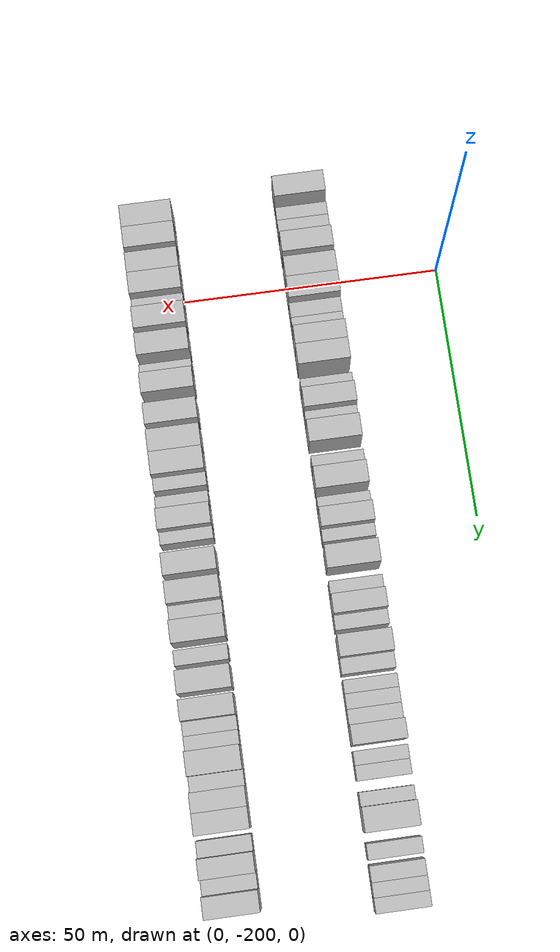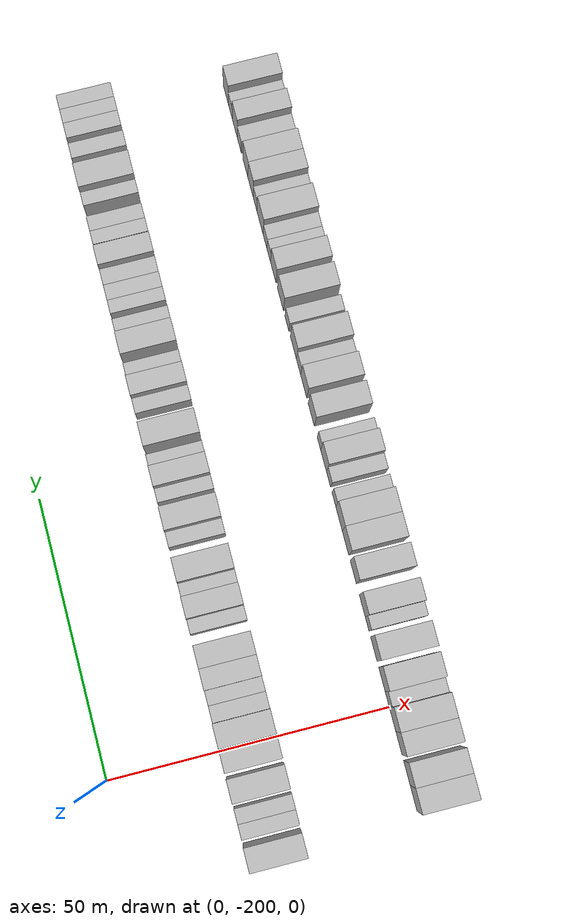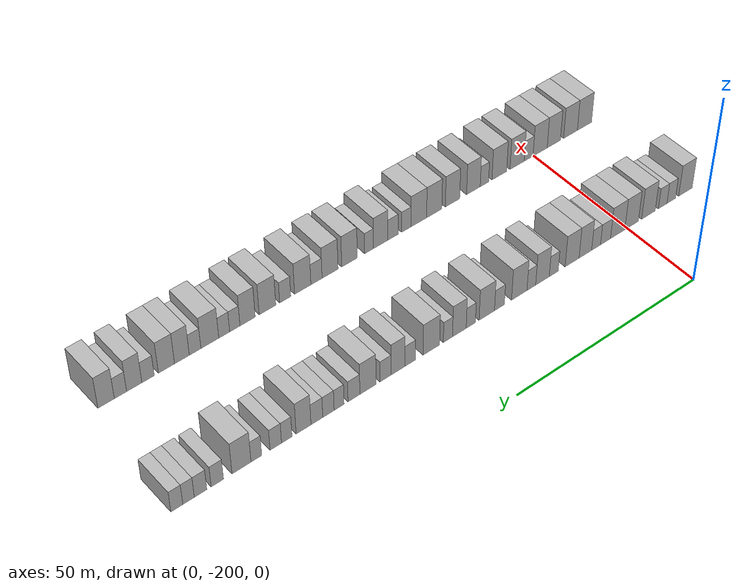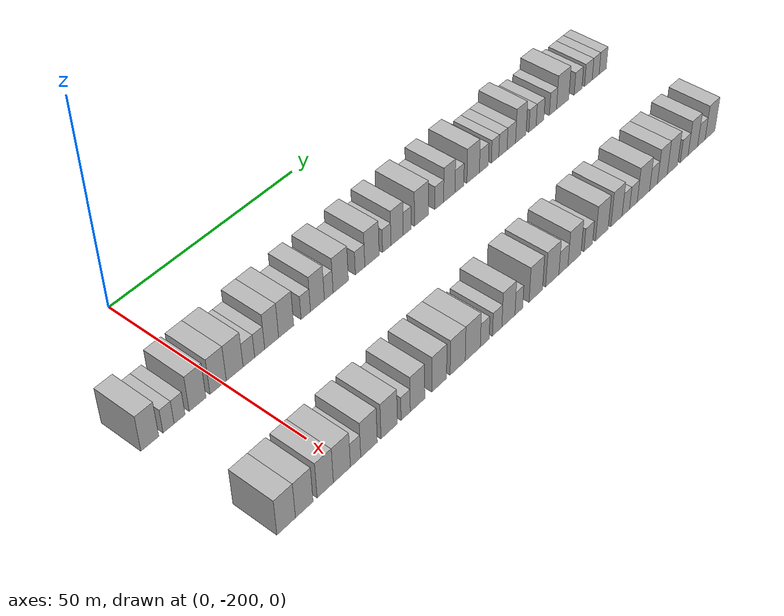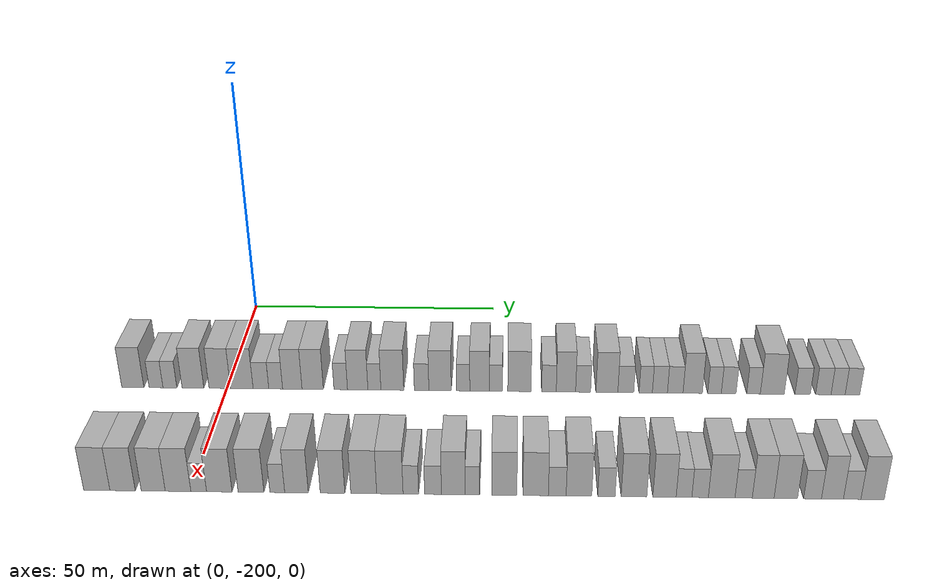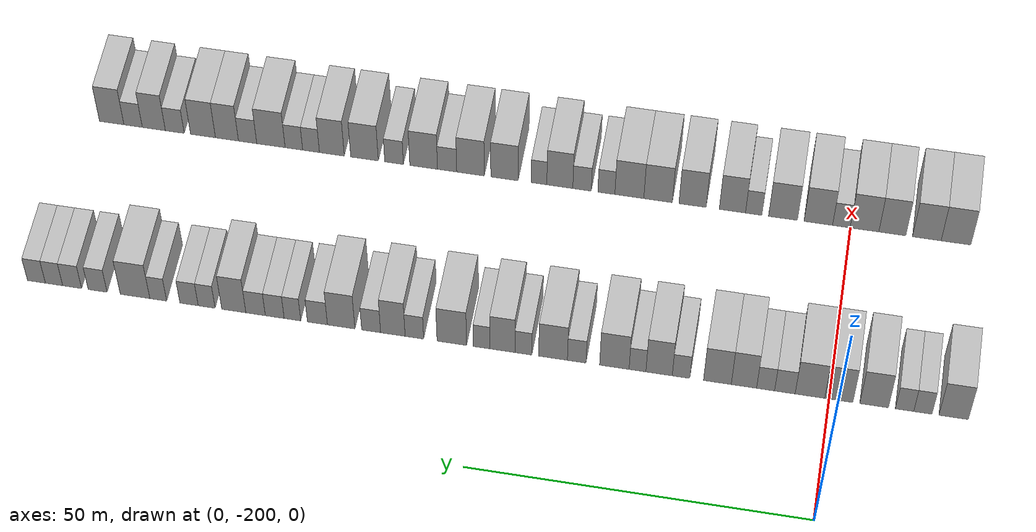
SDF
<sdf version="1.6">
 <world name="default">
  <model name="building_1">
   <static>1</static>
   <pose>25.0000 -217.8961 0 0.000000 0.000000 0.000000</pose>
   <link name="link">
    <pose>0 0 4.50 0 0 0</pose>
    <collision name="collision"><geometry><box><size>10.0000 4.2077 9.0000</size></box></geometry></collision>
    <visual name="visual">
     <cast_shadows>0</cast_shadows>
     <geometry><box><size>10.0000 4.2077 9.0000</size></box></geometry>
     <material>
      <script>
       <uri>model://HANNAS_wall/materials/scripts</uri>
       <uri>model://HANNAS_wall/materials/textures</uri>
       <name>vrc/HANNAS_wall</name>
      </script>
     </material>
    </visual>
   </link>
  </model>
  <model name="building_2">
   <static>1</static>
   <pose>25.0000 -213.4765 0 0.000000 0.000000 0.000000</pose>
   <link name="link">
    <pose>0 0 3.00 0 0 0</pose>
    <collision name="collision"><geometry><box><size>10.0000 2.6316 6.0000</size></box></geometry></collision>
    <visual name="visual">
     <cast_shadows>0</cast_shadows>
     <geometry><box><size>10.0000 2.6316 6.0000</size></box></geometry>
     <material>
      <script>
       <uri>model://HANNAS_wall/materials/scripts</uri>
       <uri>model://HANNAS_wall/materials/textures</uri>
       <name>vrc/HANNAS_wall</name>
      </script>
     </material>
    </visual>
   </link>
  </model>
  <model name="building_3">
   <static>1</static>
   <pose>25.0000 -210.8408 0 0.000000 0.000000 0.000000</pose>
   <link name="link">
    <pose>0 0 3.00 0 0 0</pose>
    <collision name="collision"><geometry><box><size>10.0000 2.6396 6.0000</size></box></geometry></collision>
    <visual name="visual">
     <cast_shadows>0</cast_shadows>
     <geometry><box><size>10.0000 2.6396 6.0000</size></box></geometry>
     <material>
      <script>
       <uri>model://HANNAS_wall/materials/scripts</uri>
       <uri>model://HANNAS_wall/materials/textures</uri>
       <name>vrc/HANNAS_wall</name>
      </script>
     </material>
    </visual>
   </link>
  </model>
  <model name="building_4">
   <static>1</static>
   <pose>25.0000 -206.4568 0 0.000000 0.000000 0.000000</pose>
   <link name="link">
    <pose>0 0 4.50 0 0 0</pose>
    <collision name="collision"><geometry><box><size>10.0000 4.1285 9.0000</size></box></geometry></collision>
    <visual name="visual">
     <cast_shadows>0</cast_shadows>
     <geometry><box><size>10.0000 4.1285 9.0000</size></box></geometry>
     <material>
      <script>
       <uri>model://HANNAS_wall/materials/scripts</uri>
       <uri>model://HANNAS_wall/materials/textures</uri>
       <name>vrc/HANNAS_wall</name>
      </script>
     </material>
    </visual>
   </link>
  </model>
  <model name="building_5">
   <static>1</static>
   <pose>25.0000 -201.3536 0 0.000000 0.000000 0.000000</pose>
   <link name="link">
    <pose>0 0 4.50 0 0 0</pose>
    <collision name="collision"><geometry><box><size>10.0000 4.0779 9.0000</size></box></geometry></collision>
    <visual name="visual">
     <cast_shadows>0</cast_shadows>
     <geometry><box><size>10.0000 4.0779 9.0000</size></box></geometry>
     <material>
      <script>
       <uri>model://HANNAS_wall/materials/scripts</uri>
       <uri>model://HANNAS_wall/materials/textures</uri>
       <name>vrc/HANNAS_wall</name>
      </script>
     </material>
    </visual>
   </link>
  </model>
  <model name="building_6">
   <static>1</static>
   <pose>25.0000 -197.1710 0 0.000000 0.000000 0.000000</pose>
   <link name="link">
    <pose>0 0 4.50 0 0 0</pose>
    <collision name="collision"><geometry><box><size>10.0000 4.2873 9.0000</size></box></geometry></collision>
    <visual name="visual">
     <cast_shadows>0</cast_shadows>
     <geometry><box><size>10.0000 4.2873 9.0000</size></box></geometry>
     <material>
      <script>
       <uri>model://HANNAS_wall/materials/scripts</uri>
       <uri>model://HANNAS_wall/materials/textures</uri>
       <name>vrc/HANNAS_wall</name>
      </script>
     </material>
    </visual>
   </link>
  </model>
  <model name="building_7">
   <static>1</static>
   <pose>25.0000 -193.5384 0 0.000000 0.000000 0.000000</pose>
   <link name="link">
    <pose>0 0 3.00 0 0 0</pose>
    <collision name="collision"><geometry><box><size>10.0000 2.9780 6.0000</size></box></geometry></collision>
    <visual name="visual">
     <cast_shadows>0</cast_shadows>
     <geometry><box><size>10.0000 2.9780 6.0000</size></box></geometry>
     <material>
      <script>
       <uri>model://HANNAS_wall/materials/scripts</uri>
       <uri>model://HANNAS_wall/materials/textures</uri>
       <name>vrc/HANNAS_wall</name>
      </script>
     </material>
    </visual>
   </link>
  </model>
  <model name="building_8">
   <static>1</static>
   <pose>25.0000 -190.7405 0 0.000000 0.000000 0.000000</pose>
   <link name="link">
    <pose>0 0 3.00 0 0 0</pose>
    <collision name="collision"><geometry><box><size>10.0000 2.6176 6.0000</size></box></geometry></collision>
    <visual name="visual">
     <cast_shadows>0</cast_shadows>
     <geometry><box><size>10.0000 2.6176 6.0000</size></box></geometry>
     <material>
      <script>
       <uri>model://HANNAS_wall/materials/scripts</uri>
       <uri>model://HANNAS_wall/materials/textures</uri>
       <name>vrc/HANNAS_wall</name>
      </script>
     </material>
    </visual>
   </link>
  </model>
  <model name="building_9">
   <static>1</static>
   <pose>25.0000 -187.5881 0 0.000000 0.000000 0.000000</pose>
   <link name="link">
    <pose>0 0 4.50 0 0 0</pose>
    <collision name="collision"><geometry><box><size>10.0000 3.6871 9.0000</size></box></geometry></collision>
    <visual name="visual">
     <cast_shadows>0</cast_shadows>
     <geometry><box><size>10.0000 3.6871 9.0000</size></box></geometry>
     <material>
      <script>
       <uri>model://HANNAS_wall/materials/scripts</uri>
       <uri>model://HANNAS_wall/materials/textures</uri>
       <name>vrc/HANNAS_wall</name>
      </script>
     </material>
    </visual>
   </link>
  </model>
  <model name="building_10">
   <static>1</static>
   <pose>25.0000 -183.7218 0 0.000000 0.000000 0.000000</pose>
   <link name="link">
    <pose>0 0 4.50 0 0 0</pose>
    <collision name="collision"><geometry><box><size>10.0000 4.0456 9.0000</size></box></geometry></collision>
    <visual name="visual">
     <cast_shadows>0</cast_shadows>
     <geometry><box><size>10.0000 4.0456 9.0000</size></box></geometry>
     <material>
      <script>
       <uri>model://HANNAS_wall/materials/scripts</uri>
       <uri>model://HANNAS_wall/materials/textures</uri>
       <name>vrc/HANNAS_wall</name>
      </script>
     </material>
    </visual>
   </link>
  </model>
  <model name="building_11">
   <static>1</static>
   <pose>25.0000 -178.4140 0 0.000000 0.000000 0.000000</pose>
   <link name="link">
    <pose>0 0 3.00 0 0 0</pose>
    <collision name="collision"><geometry><box><size>10.0000 2.5701 6.0000</size></box></geometry></collision>
    <visual name="visual">
     <cast_shadows>0</cast_shadows>
     <geometry><box><size>10.0000 2.5701 6.0000</size></box></geometry>
     <material>
      <script>
       <uri>model://HANNAS_wall/materials/scripts</uri>
       <uri>model://HANNAS_wall/materials/textures</uri>
       <name>vrc/HANNAS_wall</name>
      </script>
     </material>
    </visual>
   </link>
  </model>
  <model name="building_12">
   <static>1</static>
   <pose>25.0000 -175.1994 0 0.000000 0.000000 0.000000</pose>
   <link name="link">
    <pose>0 0 4.50 0 0 0</pose>
    <collision name="collision"><geometry><box><size>10.0000 3.8590 9.0000</size></box></geometry></collision>
    <visual name="visual">
     <cast_shadows>0</cast_shadows>
     <geometry><box><size>10.0000 3.8590 9.0000</size></box></geometry>
     <material>
      <script>
       <uri>model://HANNAS_wall/materials/scripts</uri>
       <uri>model://HANNAS_wall/materials/textures</uri>
       <name>vrc/HANNAS_wall</name>
      </script>
     </material>
    </visual>
   </link>
  </model>
  <model name="building_13">
   <static>1</static>
   <pose>25.0000 -172.0381 0 0.000000 0.000000 0.000000</pose>
   <link name="link">
    <pose>0 0 3.00 0 0 0</pose>
    <collision name="collision"><geometry><box><size>10.0000 2.4635 6.0000</size></box></geometry></collision>
    <visual name="visual">
     <cast_shadows>0</cast_shadows>
     <geometry><box><size>10.0000 2.4635 6.0000</size></box></geometry>
     <material>
      <script>
       <uri>model://HANNAS_wall/materials/scripts</uri>
       <uri>model://HANNAS_wall/materials/textures</uri>
       <name>vrc/HANNAS_wall</name>
      </script>
     </material>
    </visual>
   </link>
  </model>
  <model name="building_14">
   <static>1</static>
   <pose>25.0000 -168.6430 0 0.000000 0.000000 0.000000</pose>
   <link name="link">
    <pose>0 0 4.50 0 0 0</pose>
    <collision name="collision"><geometry><box><size>10.0000 4.3266 9.0000</size></box></geometry></collision>
    <visual name="visual">
     <cast_shadows>0</cast_shadows>
     <geometry><box><size>10.0000 4.3266 9.0000</size></box></geometry>
     <material>
      <script>
       <uri>model://HANNAS_wall/materials/scripts</uri>
       <uri>model://HANNAS_wall/materials/textures</uri>
       <name>vrc/HANNAS_wall</name>
      </script>
     </material>
    </visual>
   </link>
  </model>
  <model name="building_15">
   <static>1</static>
   <pose>25.0000 -163.1092 0 0.000000 0.000000 0.000000</pose>
   <link name="link">
    <pose>0 0 3.00 0 0 0</pose>
    <collision name="collision"><geometry><box><size>10.0000 2.7412 6.0000</size></box></geometry></collision>
    <visual name="visual">
     <cast_shadows>0</cast_shadows>
     <geometry><box><size>10.0000 2.7412 6.0000</size></box></geometry>
     <material>
      <script>
       <uri>model://HANNAS_wall/materials/scripts</uri>
       <uri>model://HANNAS_wall/materials/textures</uri>
       <name>vrc/HANNAS_wall</name>
      </script>
     </material>
    </visual>
   </link>
  </model>
  <model name="building_16">
   <static>1</static>
   <pose>25.0000 -159.6226 0 0.000000 0.000000 0.000000</pose>
   <link name="link">
    <pose>0 0 4.50 0 0 0</pose>
    <collision name="collision"><geometry><box><size>10.0000 4.2318 9.0000</size></box></geometry></collision>
    <visual name="visual">
     <cast_shadows>0</cast_shadows>
     <geometry><box><size>10.0000 4.2318 9.0000</size></box></geometry>
     <material>
      <script>
       <uri>model://HANNAS_wall/materials/scripts</uri>
       <uri>model://HANNAS_wall/materials/textures</uri>
       <name>vrc/HANNAS_wall</name>
      </script>
     </material>
    </visual>
   </link>
  </model>
  <model name="building_17">
   <static>1</static>
   <pose>25.0000 -155.2536 0 0.000000 0.000000 0.000000</pose>
   <link name="link">
    <pose>0 0 3.00 0 0 0</pose>
    <collision name="collision"><geometry><box><size>10.0000 2.5063 6.0000</size></box></geometry></collision>
    <visual name="visual">
     <cast_shadows>0</cast_shadows>
     <geometry><box><size>10.0000 2.5063 6.0000</size></box></geometry>
     <material>
      <script>
       <uri>model://HANNAS_wall/materials/scripts</uri>
       <uri>model://HANNAS_wall/materials/textures</uri>
       <name>vrc/HANNAS_wall</name>
      </script>
     </material>
    </visual>
   </link>
  </model>
  <model name="building_18">
   <static>1</static>
   <pose>25.0000 -152.1477 0 0.000000 0.000000 0.000000</pose>
   <link name="link">
    <pose>0 0 4.50 0 0 0</pose>
    <collision name="collision"><geometry><box><size>10.0000 3.7055 9.0000</size></box></geometry></collision>
    <visual name="visual">
     <cast_shadows>0</cast_shadows>
     <geometry><box><size>10.0000 3.7055 9.0000</size></box></geometry>
     <material>
      <script>
       <uri>model://HANNAS_wall/materials/scripts</uri>
       <uri>model://HANNAS_wall/materials/textures</uri>
       <name>vrc/HANNAS_wall</name>
      </script>
     </material>
    </visual>
   </link>
  </model>
  <model name="building_19">
   <static>1</static>
   <pose>25.0000 -149.0705 0 0.000000 0.000000 0.000000</pose>
   <link name="link">
    <pose>0 0 3.00 0 0 0</pose>
    <collision name="collision"><geometry><box><size>10.0000 2.4488 6.0000</size></box></geometry></collision>
    <visual name="visual">
     <cast_shadows>0</cast_shadows>
     <geometry><box><size>10.0000 2.4488 6.0000</size></box></geometry>
     <material>
      <script>
       <uri>model://HANNAS_wall/materials/scripts</uri>
       <uri>model://HANNAS_wall/materials/textures</uri>
       <name>vrc/HANNAS_wall</name>
      </script>
     </material>
    </visual>
   </link>
  </model>
  <model name="building_20">
   <static>1</static>
   <pose>25.0000 -144.6544 0 0.000000 0.000000 0.000000</pose>
   <link name="link">
    <pose>0 0 4.50 0 0 0</pose>
    <collision name="collision"><geometry><box><size>10.0000 4.3834 9.0000</size></box></geometry></collision>
    <visual name="visual">
     <cast_shadows>0</cast_shadows>
     <geometry><box><size>10.0000 4.3834 9.0000</size></box></geometry>
     <material>
      <script>
       <uri>model://HANNAS_wall/materials/scripts</uri>
       <uri>model://HANNAS_wall/materials/textures</uri>
       <name>vrc/HANNAS_wall</name>
      </script>
     </material>
    </visual>
   </link>
  </model>
  <model name="building_21">
   <static>1</static>
   <pose>25.0000 -139.0857 0 0.000000 0.000000 0.000000</pose>
   <link name="link">
    <pose>0 0 3.00 0 0 0</pose>
    <collision name="collision"><geometry><box><size>10.0000 2.7540 6.0000</size></box></geometry></collision>
    <visual name="visual">
     <cast_shadows>0</cast_shadows>
     <geometry><box><size>10.0000 2.7540 6.0000</size></box></geometry>
     <material>
      <script>
       <uri>model://HANNAS_wall/materials/scripts</uri>
       <uri>model://HANNAS_wall/materials/textures</uri>
       <name>vrc/HANNAS_wall</name>
      </script>
     </material>
    </visual>
   </link>
  </model>
  <model name="building_22">
   <static>1</static>
   <pose>25.0000 -135.8844 0 0.000000 0.000000 0.000000</pose>
   <link name="link">
    <pose>0 0 4.50 0 0 0</pose>
    <collision name="collision"><geometry><box><size>10.0000 3.6485 9.0000</size></box></geometry></collision>
    <visual name="visual">
     <cast_shadows>0</cast_shadows>
     <geometry><box><size>10.0000 3.6485 9.0000</size></box></geometry>
     <material>
      <script>
       <uri>model://HANNAS_wall/materials/scripts</uri>
       <uri>model://HANNAS_wall/materials/textures</uri>
       <name>vrc/HANNAS_wall</name>
      </script>
     </material>
    </visual>
   </link>
  </model>
  <model name="building_23">
   <static>1</static>
   <pose>25.0000 -132.6452 0 0.000000 0.000000 0.000000</pose>
   <link name="link">
    <pose>0 0 3.00 0 0 0</pose>
    <collision name="collision"><geometry><box><size>10.0000 2.8299 6.0000</size></box></geometry></collision>
    <visual name="visual">
     <cast_shadows>0</cast_shadows>
     <geometry><box><size>10.0000 2.8299 6.0000</size></box></geometry>
     <material>
      <script>
       <uri>model://HANNAS_wall/materials/scripts</uri>
       <uri>model://HANNAS_wall/materials/textures</uri>
       <name>vrc/HANNAS_wall</name>
      </script>
     </material>
    </visual>
   </link>
  </model>
  <model name="building_24">
   <static>1</static>
   <pose>25.0000 -128.1706 0 0.000000 0.000000 0.000000</pose>
   <link name="link">
    <pose>0 0 4.50 0 0 0</pose>
    <collision name="collision"><geometry><box><size>10.0000 4.1194 9.0000</size></box></geometry></collision>
    <visual name="visual">
     <cast_shadows>0</cast_shadows>
     <geometry><box><size>10.0000 4.1194 9.0000</size></box></geometry>
     <material>
      <script>
       <uri>model://HANNAS_wall/materials/scripts</uri>
       <uri>model://HANNAS_wall/materials/textures</uri>
       <name>vrc/HANNAS_wall</name>
      </script>
     </material>
    </visual>
   </link>
  </model>
  <model name="building_25">
   <static>1</static>
   <pose>25.0000 -124.6140 0 0.000000 0.000000 0.000000</pose>
   <link name="link">
    <pose>0 0 3.00 0 0 0</pose>
    <collision name="collision"><geometry><box><size>10.0000 2.9939 6.0000</size></box></geometry></collision>
    <visual name="visual">
     <cast_shadows>0</cast_shadows>
     <geometry><box><size>10.0000 2.9939 6.0000</size></box></geometry>
     <material>
      <script>
       <uri>model://HANNAS_wall/materials/scripts</uri>
       <uri>model://HANNAS_wall/materials/textures</uri>
       <name>vrc/HANNAS_wall</name>
      </script>
     </material>
    </visual>
   </link>
  </model>
  <model name="building_26">
   <static>1</static>
   <pose>25.0000 -120.8697 0 0.000000 0.000000 0.000000</pose>
   <link name="link">
    <pose>0 0 3.00 0 0 0</pose>
    <collision name="collision"><geometry><box><size>10.0000 2.4948 6.0000</size></box></geometry></collision>
    <visual name="visual">
     <cast_shadows>0</cast_shadows>
     <geometry><box><size>10.0000 2.4948 6.0000</size></box></geometry>
     <material>
      <script>
       <uri>model://HANNAS_wall/materials/scripts</uri>
       <uri>model://HANNAS_wall/materials/textures</uri>
       <name>vrc/HANNAS_wall</name>
      </script>
     </material>
    </visual>
   </link>
  </model>
  <model name="building_27">
   <static>1</static>
   <pose>25.0000 -118.2075 0 0.000000 0.000000 0.000000</pose>
   <link name="link">
    <pose>0 0 3.00 0 0 0</pose>
    <collision name="collision"><geometry><box><size>10.0000 2.8295 6.0000</size></box></geometry></collision>
    <visual name="visual">
     <cast_shadows>0</cast_shadows>
     <geometry><box><size>10.0000 2.8295 6.0000</size></box></geometry>
     <material>
      <script>
       <uri>model://HANNAS_wall/materials/scripts</uri>
       <uri>model://HANNAS_wall/materials/textures</uri>
       <name>vrc/HANNAS_wall</name>
      </script>
     </material>
    </visual>
   </link>
  </model>
  <model name="building_28">
   <static>1</static>
   <pose>25.0000 -115.3302 0 0.000000 0.000000 0.000000</pose>
   <link name="link">
    <pose>0 0 3.00 0 0 0</pose>
    <collision name="collision"><geometry><box><size>10.0000 2.9252 6.0000</size></box></geometry></collision>
    <visual name="visual">
     <cast_shadows>0</cast_shadows>
     <geometry><box><size>10.0000 2.9252 6.0000</size></box></geometry>
     <material>
      <script>
       <uri>model://HANNAS_wall/materials/scripts</uri>
       <uri>model://HANNAS_wall/materials/textures</uri>
       <name>vrc/HANNAS_wall</name>
      </script>
     </material>
    </visual>
   </link>
  </model>
  <model name="building_29">
   <static>1</static>
   <pose>25.0000 -112.0483 0 0.000000 0.000000 0.000000</pose>
   <link name="link">
    <pose>0 0 4.50 0 0 0</pose>
    <collision name="collision"><geometry><box><size>10.0000 3.6387 9.0000</size></box></geometry></collision>
    <visual name="visual">
     <cast_shadows>0</cast_shadows>
     <geometry><box><size>10.0000 3.6387 9.0000</size></box></geometry>
     <material>
      <script>
       <uri>model://HANNAS_wall/materials/scripts</uri>
       <uri>model://HANNAS_wall/materials/textures</uri>
       <name>vrc/HANNAS_wall</name>
      </script>
     </material>
    </visual>
   </link>
  </model>
  <model name="building_30">
   <static>1</static>
   <pose>25.0000 -107.9524 0 0.000000 0.000000 0.000000</pose>
   <link name="link">
    <pose>0 0 3.00 0 0 0</pose>
    <collision name="collision"><geometry><box><size>10.0000 2.5531 6.0000</size></box></geometry></collision>
    <visual name="visual">
     <cast_shadows>0</cast_shadows>
     <geometry><box><size>10.0000 2.5531 6.0000</size></box></geometry>
     <material>
      <script>
       <uri>model://HANNAS_wall/materials/scripts</uri>
       <uri>model://HANNAS_wall/materials/textures</uri>
       <name>vrc/HANNAS_wall</name>
      </script>
     </material>
    </visual>
   </link>
  </model>
  <model name="building_31">
   <static>1</static>
   <pose>25.0000 -105.2951 0 0.000000 0.000000 0.000000</pose>
   <link name="link">
    <pose>0 0 3.00 0 0 0</pose>
    <collision name="collision"><geometry><box><size>10.0000 2.7616 6.0000</size></box></geometry></collision>
    <visual name="visual">
     <cast_shadows>0</cast_shadows>
     <geometry><box><size>10.0000 2.7616 6.0000</size></box></geometry>
     <material>
      <script>
       <uri>model://HANNAS_wall/materials/scripts</uri>
       <uri>model://HANNAS_wall/materials/textures</uri>
       <name>vrc/HANNAS_wall</name>
      </script>
     </material>
    </visual>
   </link>
  </model>
  <model name="building_32">
   <static>1</static>
   <pose>25.0000 -100.6387 0 0.000000 0.000000 0.000000</pose>
   <link name="link">
    <pose>0 0 3.00 0 0 0</pose>
    <collision name="collision"><geometry><box><size>10.0000 2.5512 6.0000</size></box></geometry></collision>
    <visual name="visual">
     <cast_shadows>0</cast_shadows>
     <geometry><box><size>10.0000 2.5512 6.0000</size></box></geometry>
     <material>
      <script>
       <uri>model://HANNAS_wall/materials/scripts</uri>
       <uri>model://HANNAS_wall/materials/textures</uri>
       <name>vrc/HANNAS_wall</name>
      </script>
     </material>
    </visual>
   </link>
  </model>
  <model name="building_33">
   <static>1</static>
   <pose>25.0000 -97.1202 0 0.000000 0.000000 0.000000</pose>
   <link name="link">
    <pose>0 0 4.50 0 0 0</pose>
    <collision name="collision"><geometry><box><size>10.0000 4.4859 9.0000</size></box></geometry></collision>
    <visual name="visual">
     <cast_shadows>0</cast_shadows>
     <geometry><box><size>10.0000 4.4859 9.0000</size></box></geometry>
     <material>
      <script>
       <uri>model://HANNAS_wall/materials/scripts</uri>
       <uri>model://HANNAS_wall/materials/textures</uri>
       <name>vrc/HANNAS_wall</name>
      </script>
     </material>
    </visual>
   </link>
  </model>
  <model name="building_34">
   <static>1</static>
   <pose>25.0000 -91.4391 0 0.000000 0.000000 0.000000</pose>
   <link name="link">
    <pose>0 0 3.00 0 0 0</pose>
    <collision name="collision"><geometry><box><size>10.0000 2.8762 6.0000</size></box></geometry></collision>
    <visual name="visual">
     <cast_shadows>0</cast_shadows>
     <geometry><box><size>10.0000 2.8762 6.0000</size></box></geometry>
     <material>
      <script>
       <uri>model://HANNAS_wall/materials/scripts</uri>
       <uri>model://HANNAS_wall/materials/textures</uri>
       <name>vrc/HANNAS_wall</name>
      </script>
     </material>
    </visual>
   </link>
  </model>
  <model name="building_35">
   <static>1</static>
   <pose>25.0000 -87.5607 0 0.000000 0.000000 0.000000</pose>
   <link name="link">
    <pose>0 0 3.00 0 0 0</pose>
    <collision name="collision"><geometry><box><size>10.0000 2.8806 6.0000</size></box></geometry></collision>
    <visual name="visual">
     <cast_shadows>0</cast_shadows>
     <geometry><box><size>10.0000 2.8806 6.0000</size></box></geometry>
     <material>
      <script>
       <uri>model://HANNAS_wall/materials/scripts</uri>
       <uri>model://HANNAS_wall/materials/textures</uri>
       <name>vrc/HANNAS_wall</name>
      </script>
     </material>
    </visual>
   </link>
  </model>
  <model name="building_36">
   <static>1</static>
   <pose>25.0000 -84.8010 0 0.000000 0.000000 0.000000</pose>
   <link name="link">
    <pose>0 0 3.00 0 0 0</pose>
    <collision name="collision"><geometry><box><size>10.0000 2.6389 6.0000</size></box></geometry></collision>
    <visual name="visual">
     <cast_shadows>0</cast_shadows>
     <geometry><box><size>10.0000 2.6389 6.0000</size></box></geometry>
     <material>
      <script>
       <uri>model://HANNAS_wall/materials/scripts</uri>
       <uri>model://HANNAS_wall/materials/textures</uri>
       <name>vrc/HANNAS_wall</name>
      </script>
     </material>
    </visual>
   </link>
  </model>
  <model name="building_37">
   <static>1</static>
   <pose>25.0000 -82.1137 0 0.000000 0.000000 0.000000</pose>
   <link name="link">
    <pose>0 0 3.00 0 0 0</pose>
    <collision name="collision"><geometry><box><size>10.0000 2.7355 6.0000</size></box></geometry></collision>
    <visual name="visual">
     <cast_shadows>0</cast_shadows>
     <geometry><box><size>10.0000 2.7355 6.0000</size></box></geometry>
     <material>
      <script>
       <uri>model://HANNAS_wall/materials/scripts</uri>
       <uri>model://HANNAS_wall/materials/textures</uri>
       <name>vrc/HANNAS_wall</name>
      </script>
     </material>
    </visual>
   </link>
  </model>
  <model name="building_107">
   <static>1</static>
   <pose>55.0000 -215.7790 0 0.000000 0.000000 0.000000</pose>
   <link name="link">
    <pose>0 0 4.50 0 0 0</pose>
    <collision name="collision"><geometry><box><size>10.0000 4.4420 9.0000</size></box></geometry></collision>
    <visual name="visual">
     <cast_shadows>0</cast_shadows>
     <geometry><box><size>10.0000 4.4420 9.0000</size></box></geometry>
     <material>
      <script>
       <uri>model://HANNAS_wall/materials/scripts</uri>
       <uri>model://HANNAS_wall/materials/textures</uri>
       <name>vrc/HANNAS_wall</name>
      </script>
     </material>
    </visual>
   </link>
  </model>
  <model name="building_108">
   <static>1</static>
   <pose>55.0000 -211.4165 0 0.000000 0.000000 0.000000</pose>
   <link name="link">
    <pose>0 0 4.50 0 0 0</pose>
    <collision name="collision"><geometry><box><size>10.0000 4.2831 9.0000</size></box></geometry></collision>
    <visual name="visual">
     <cast_shadows>0</cast_shadows>
     <geometry><box><size>10.0000 4.2831 9.0000</size></box></geometry>
     <material>
      <script>
       <uri>model://HANNAS_wall/materials/scripts</uri>
       <uri>model://HANNAS_wall/materials/textures</uri>
       <name>vrc/HANNAS_wall</name>
      </script>
     </material>
    </visual>
   </link>
  </model>
  <model name="building_109">
   <static>1</static>
   <pose>55.0000 -206.2473 0 0.000000 0.000000 0.000000</pose>
   <link name="link">
    <pose>0 0 4.50 0 0 0</pose>
    <collision name="collision"><geometry><box><size>10.0000 4.0553 9.0000</size></box></geometry></collision>
    <visual name="visual">
     <cast_shadows>0</cast_shadows>
     <geometry><box><size>10.0000 4.0553 9.0000</size></box></geometry>
     <material>
      <script>
       <uri>model://HANNAS_wall/materials/scripts</uri>
       <uri>model://HANNAS_wall/materials/textures</uri>
       <name>vrc/HANNAS_wall</name>
      </script>
     </material>
    </visual>
   </link>
  </model>
  <model name="building_110">
   <static>1</static>
   <pose>55.0000 -202.0611 0 0.000000 0.000000 0.000000</pose>
   <link name="link">
    <pose>0 0 4.50 0 0 0</pose>
    <collision name="collision"><geometry><box><size>10.0000 4.3172 9.0000</size></box></geometry></collision>
    <visual name="visual">
     <cast_shadows>0</cast_shadows>
     <geometry><box><size>10.0000 4.3172 9.0000</size></box></geometry>
     <material>
      <script>
       <uri>model://HANNAS_wall/materials/scripts</uri>
       <uri>model://HANNAS_wall/materials/textures</uri>
       <name>vrc/HANNAS_wall</name>
      </script>
     </material>
    </visual>
   </link>
  </model>
  <model name="building_111">
   <static>1</static>
   <pose>55.0000 -198.5797 0 0.000000 0.000000 0.000000</pose>
   <link name="link">
    <pose>0 0 3.00 0 0 0</pose>
    <collision name="collision"><geometry><box><size>10.0000 2.6455 6.0000</size></box></geometry></collision>
    <visual name="visual">
     <cast_shadows>0</cast_shadows>
     <geometry><box><size>10.0000 2.6455 6.0000</size></box></geometry>
     <material>
      <script>
       <uri>model://HANNAS_wall/materials/scripts</uri>
       <uri>model://HANNAS_wall/materials/textures</uri>
       <name>vrc/HANNAS_wall</name>
      </script>
     </material>
    </visual>
   </link>
  </model>
  <model name="building_112">
   <static>1</static>
   <pose>55.0000 -195.1062 0 0.000000 0.000000 0.000000</pose>
   <link name="link">
    <pose>0 0 4.50 0 0 0</pose>
    <collision name="collision"><geometry><box><size>10.0000 4.3015 9.0000</size></box></geometry></collision>
    <visual name="visual">
     <cast_shadows>0</cast_shadows>
     <geometry><box><size>10.0000 4.3015 9.0000</size></box></geometry>
     <material>
      <script>
       <uri>model://HANNAS_wall/materials/scripts</uri>
       <uri>model://HANNAS_wall/materials/textures</uri>
       <name>vrc/HANNAS_wall</name>
      </script>
     </material>
    </visual>
   </link>
  </model>
  <model name="building_113">
   <static>1</static>
   <pose>55.0000 -189.7731 0 0.000000 0.000000 0.000000</pose>
   <link name="link">
    <pose>0 0 4.50 0 0 0</pose>
    <collision name="collision"><geometry><box><size>10.0000 4.3645 9.0000</size></box></geometry></collision>
    <visual name="visual">
     <cast_shadows>0</cast_shadows>
     <geometry><box><size>10.0000 4.3645 9.0000</size></box></geometry>
     <material>
      <script>
       <uri>model://HANNAS_wall/materials/scripts</uri>
       <uri>model://HANNAS_wall/materials/textures</uri>
       <name>vrc/HANNAS_wall</name>
      </script>
     </material>
    </visual>
   </link>
  </model>
  <model name="building_114">
   <static>1</static>
   <pose>55.0000 -185.3471 0 0.000000 0.000000 0.000000</pose>
   <link name="link">
    <pose>0 0 3.00 0 0 0</pose>
    <collision name="collision"><geometry><box><size>10.0000 2.4875 6.0000</size></box></geometry></collision>
    <visual name="visual">
     <cast_shadows>0</cast_shadows>
     <geometry><box><size>10.0000 2.4875 6.0000</size></box></geometry>
     <material>
      <script>
       <uri>model://HANNAS_wall/materials/scripts</uri>
       <uri>model://HANNAS_wall/materials/textures</uri>
       <name>vrc/HANNAS_wall</name>
      </script>
     </material>
    </visual>
   </link>
  </model>
  <model name="building_115">
   <static>1</static>
   <pose>55.0000 -182.1144 0 0.000000 0.000000 0.000000</pose>
   <link name="link">
    <pose>0 0 4.50 0 0 0</pose>
    <collision name="collision"><geometry><box><size>10.0000 3.9780 9.0000</size></box></geometry></collision>
    <visual name="visual">
     <cast_shadows>0</cast_shadows>
     <geometry><box><size>10.0000 3.9780 9.0000</size></box></geometry>
     <material>
      <script>
       <uri>model://HANNAS_wall/materials/scripts</uri>
       <uri>model://HANNAS_wall/materials/textures</uri>
       <name>vrc/HANNAS_wall</name>
      </script>
     </material>
    </visual>
   </link>
  </model>
  <model name="building_116">
   <static>1</static>
   <pose>55.0000 -176.0581 0 0.000000 0.000000 0.000000</pose>
   <link name="link">
    <pose>0 0 4.50 0 0 0</pose>
    <collision name="collision"><geometry><box><size>10.0000 4.1346 9.0000</size></box></geometry></collision>
    <visual name="visual">
     <cast_shadows>0</cast_shadows>
     <geometry><box><size>10.0000 4.1346 9.0000</size></box></geometry>
     <material>
      <script>
       <uri>model://HANNAS_wall/materials/scripts</uri>
       <uri>model://HANNAS_wall/materials/textures</uri>
       <name>vrc/HANNAS_wall</name>
      </script>
     </material>
    </visual>
   </link>
  </model>
  <model name="building_117">
   <static>1</static>
   <pose>55.0000 -170.8173 0 0.000000 0.000000 0.000000</pose>
   <link name="link">
    <pose>0 0 4.50 0 0 0</pose>
    <collision name="collision"><geometry><box><size>10.0000 4.3470 9.0000</size></box></geometry></collision>
    <visual name="visual">
     <cast_shadows>0</cast_shadows>
     <geometry><box><size>10.0000 4.3470 9.0000</size></box></geometry>
     <material>
      <script>
       <uri>model://HANNAS_wall/materials/scripts</uri>
       <uri>model://HANNAS_wall/materials/textures</uri>
       <name>vrc/HANNAS_wall</name>
      </script>
     </material>
    </visual>
   </link>
  </model>
  <model name="building_118">
   <static>1</static>
   <pose>55.0000 -166.4318 0 0.000000 0.000000 0.000000</pose>
   <link name="link">
    <pose>0 0 4.50 0 0 0</pose>
    <collision name="collision"><geometry><box><size>10.0000 4.4240 9.0000</size></box></geometry></collision>
    <visual name="visual">
     <cast_shadows>0</cast_shadows>
     <geometry><box><size>10.0000 4.4240 9.0000</size></box></geometry>
     <material>
      <script>
       <uri>model://HANNAS_wall/materials/scripts</uri>
       <uri>model://HANNAS_wall/materials/textures</uri>
       <name>vrc/HANNAS_wall</name>
      </script>
     </material>
    </visual>
   </link>
  </model>
  <model name="building_119">
   <static>1</static>
   <pose>55.0000 -162.9152 0 0.000000 0.000000 0.000000</pose>
   <link name="link">
    <pose>0 0 3.00 0 0 0</pose>
    <collision name="collision"><geometry><box><size>10.0000 2.6091 6.0000</size></box></geometry></collision>
    <visual name="visual">
     <cast_shadows>0</cast_shadows>
     <geometry><box><size>10.0000 2.6091 6.0000</size></box></geometry>
     <material>
      <script>
       <uri>model://HANNAS_wall/materials/scripts</uri>
       <uri>model://HANNAS_wall/materials/textures</uri>
       <name>vrc/HANNAS_wall</name>
      </script>
     </material>
    </visual>
   </link>
  </model>
  <model name="building_120">
   <static>1</static>
   <pose>55.0000 -159.1968 0 0.000000 0.000000 0.000000</pose>
   <link name="link">
    <pose>0 0 3.00 0 0 0</pose>
    <collision name="collision"><geometry><box><size>10.0000 2.8277 6.0000</size></box></geometry></collision>
    <visual name="visual">
     <cast_shadows>0</cast_shadows>
     <geometry><box><size>10.0000 2.8277 6.0000</size></box></geometry>
     <material>
      <script>
       <uri>model://HANNAS_wall/materials/scripts</uri>
       <uri>model://HANNAS_wall/materials/textures</uri>
       <name>vrc/HANNAS_wall</name>
      </script>
     </material>
    </visual>
   </link>
  </model>
  <model name="building_121">
   <static>1</static>
   <pose>55.0000 -155.7859 0 0.000000 0.000000 0.000000</pose>
   <link name="link">
    <pose>0 0 4.50 0 0 0</pose>
    <collision name="collision"><geometry><box><size>10.0000 3.9941 9.0000</size></box></geometry></collision>
    <visual name="visual">
     <cast_shadows>0</cast_shadows>
     <geometry><box><size>10.0000 3.9941 9.0000</size></box></geometry>
     <material>
      <script>
       <uri>model://HANNAS_wall/materials/scripts</uri>
       <uri>model://HANNAS_wall/materials/textures</uri>
       <name>vrc/HANNAS_wall</name>
      </script>
     </material>
    </visual>
   </link>
  </model>
  <model name="building_122">
   <static>1</static>
   <pose>55.0000 -152.5881 0 0.000000 0.000000 0.000000</pose>
   <link name="link">
    <pose>0 0 3.00 0 0 0</pose>
    <collision name="collision"><geometry><box><size>10.0000 2.4015 6.0000</size></box></geometry></collision>
    <visual name="visual">
     <cast_shadows>0</cast_shadows>
     <geometry><box><size>10.0000 2.4015 6.0000</size></box></geometry>
     <material>
      <script>
       <uri>model://HANNAS_wall/materials/scripts</uri>
       <uri>model://HANNAS_wall/materials/textures</uri>
       <name>vrc/HANNAS_wall</name>
      </script>
     </material>
    </visual>
   </link>
  </model>
  <model name="building_123">
   <static>1</static>
   <pose>55.0000 -147.2795 0 0.000000 0.000000 0.000000</pose>
   <link name="link">
    <pose>0 0 4.50 0 0 0</pose>
    <collision name="collision"><geometry><box><size>10.0000 4.2157 9.0000</size></box></geometry></collision>
    <visual name="visual">
     <cast_shadows>0</cast_shadows>
     <geometry><box><size>10.0000 4.2157 9.0000</size></box></geometry>
     <material>
      <script>
       <uri>model://HANNAS_wall/materials/scripts</uri>
       <uri>model://HANNAS_wall/materials/textures</uri>
       <name>vrc/HANNAS_wall</name>
      </script>
     </material>
    </visual>
   </link>
  </model>
  <model name="building_124">
   <static>1</static>
   <pose>55.0000 -142.0415 0 0.000000 0.000000 0.000000</pose>
   <link name="link">
    <pose>0 0 4.50 0 0 0</pose>
    <collision name="collision"><geometry><box><size>10.0000 4.2603 9.0000</size></box></geometry></collision>
    <visual name="visual">
     <cast_shadows>0</cast_shadows>
     <geometry><box><size>10.0000 4.2603 9.0000</size></box></geometry>
     <material>
      <script>
       <uri>model://HANNAS_wall/materials/scripts</uri>
       <uri>model://HANNAS_wall/materials/textures</uri>
       <name>vrc/HANNAS_wall</name>
      </script>
     </material>
    </visual>
   </link>
  </model>
  <model name="building_125">
   <static>1</static>
   <pose>55.0000 -138.4262 0 0.000000 0.000000 0.000000</pose>
   <link name="link">
    <pose>0 0 3.00 0 0 0</pose>
    <collision name="collision"><geometry><box><size>10.0000 2.9701 6.0000</size></box></geometry></collision>
    <visual name="visual">
     <cast_shadows>0</cast_shadows>
     <geometry><box><size>10.0000 2.9701 6.0000</size></box></geometry>
     <material>
      <script>
       <uri>model://HANNAS_wall/materials/scripts</uri>
       <uri>model://HANNAS_wall/materials/textures</uri>
       <name>vrc/HANNAS_wall</name>
      </script>
     </material>
    </visual>
   </link>
  </model>
  <model name="building_126">
   <static>1</static>
   <pose>55.0000 -134.7971 0 0.000000 0.000000 0.000000</pose>
   <link name="link">
    <pose>0 0 4.50 0 0 0</pose>
    <collision name="collision"><geometry><box><size>10.0000 4.2881 9.0000</size></box></geometry></collision>
    <visual name="visual">
     <cast_shadows>0</cast_shadows>
     <geometry><box><size>10.0000 4.2881 9.0000</size></box></geometry>
     <material>
      <script>
       <uri>model://HANNAS_wall/materials/scripts</uri>
       <uri>model://HANNAS_wall/materials/textures</uri>
       <name>vrc/HANNAS_wall</name>
      </script>
     </material>
    </visual>
   </link>
  </model>
  <model name="building_127">
   <static>1</static>
   <pose>55.0000 -130.2082 0 0.000000 0.000000 0.000000</pose>
   <link name="link">
    <pose>0 0 3.00 0 0 0</pose>
    <collision name="collision"><geometry><box><size>10.0000 2.8899 6.0000</size></box></geometry></collision>
    <visual name="visual">
     <cast_shadows>0</cast_shadows>
     <geometry><box><size>10.0000 2.8899 6.0000</size></box></geometry>
     <material>
      <script>
       <uri>model://HANNAS_wall/materials/scripts</uri>
       <uri>model://HANNAS_wall/materials/textures</uri>
       <name>vrc/HANNAS_wall</name>
      </script>
     </material>
    </visual>
   </link>
  </model>
  <model name="building_128">
   <static>1</static>
   <pose>55.0000 -125.6181 0 0.000000 0.000000 0.000000</pose>
   <link name="link">
    <pose>0 0 4.50 0 0 0</pose>
    <collision name="collision"><geometry><box><size>10.0000 4.2903 9.0000</size></box></geometry></collision>
    <visual name="visual">
     <cast_shadows>0</cast_shadows>
     <geometry><box><size>10.0000 4.2903 9.0000</size></box></geometry>
     <material>
      <script>
       <uri>model://HANNAS_wall/materials/scripts</uri>
       <uri>model://HANNAS_wall/materials/textures</uri>
       <name>vrc/HANNAS_wall</name>
      </script>
     </material>
    </visual>
   </link>
  </model>
  <model name="building_129">
   <static>1</static>
   <pose>55.0000 -120.5333 0 0.000000 0.000000 0.000000</pose>
   <link name="link">
    <pose>0 0 4.50 0 0 0</pose>
    <collision name="collision"><geometry><box><size>10.0000 3.8793 9.0000</size></box></geometry></collision>
    <visual name="visual">
     <cast_shadows>0</cast_shadows>
     <geometry><box><size>10.0000 3.8793 9.0000</size></box></geometry>
     <material>
      <script>
       <uri>model://HANNAS_wall/materials/scripts</uri>
       <uri>model://HANNAS_wall/materials/textures</uri>
       <name>vrc/HANNAS_wall</name>
      </script>
     </material>
    </visual>
   </link>
  </model>
  <model name="building_130">
   <static>1</static>
   <pose>55.0000 -117.2867 0 0.000000 0.000000 0.000000</pose>
   <link name="link">
    <pose>0 0 3.00 0 0 0</pose>
    <collision name="collision"><geometry><box><size>10.0000 2.6140 6.0000</size></box></geometry></collision>
    <visual name="visual">
     <cast_shadows>0</cast_shadows>
     <geometry><box><size>10.0000 2.6140 6.0000</size></box></geometry>
     <material>
      <script>
       <uri>model://HANNAS_wall/materials/scripts</uri>
       <uri>model://HANNAS_wall/materials/textures</uri>
       <name>vrc/HANNAS_wall</name>
      </script>
     </material>
    </visual>
   </link>
  </model>
  <model name="building_131">
   <static>1</static>
   <pose>55.0000 -114.6100 0 0.000000 0.000000 0.000000</pose>
   <link name="link">
    <pose>0 0 3.00 0 0 0</pose>
    <collision name="collision"><geometry><box><size>10.0000 2.7395 6.0000</size></box></geometry></collision>
    <visual name="visual">
     <cast_shadows>0</cast_shadows>
     <geometry><box><size>10.0000 2.7395 6.0000</size></box></geometry>
     <material>
      <script>
       <uri>model://HANNAS_wall/materials/scripts</uri>
       <uri>model://HANNAS_wall/materials/textures</uri>
       <name>vrc/HANNAS_wall</name>
      </script>
     </material>
    </visual>
   </link>
  </model>
  <model name="building_132">
   <static>1</static>
   <pose>55.0000 -111.0204 0 0.000000 0.000000 0.000000</pose>
   <link name="link">
    <pose>0 0 4.50 0 0 0</pose>
    <collision name="collision"><geometry><box><size>10.0000 4.4396 9.0000</size></box></geometry></collision>
    <visual name="visual">
     <cast_shadows>0</cast_shadows>
     <geometry><box><size>10.0000 4.4396 9.0000</size></box></geometry>
     <material>
      <script>
       <uri>model://HANNAS_wall/materials/scripts</uri>
       <uri>model://HANNAS_wall/materials/textures</uri>
       <name>vrc/HANNAS_wall</name>
      </script>
     </material>
    </visual>
   </link>
  </model>
  <model name="building_133">
   <static>1</static>
   <pose>55.0000 -107.3657 0 0.000000 0.000000 0.000000</pose>
   <link name="link">
    <pose>0 0 3.00 0 0 0</pose>
    <collision name="collision"><geometry><box><size>10.0000 2.8698 6.0000</size></box></geometry></collision>
    <visual name="visual">
     <cast_shadows>0</cast_shadows>
     <geometry><box><size>10.0000 2.8698 6.0000</size></box></geometry>
     <material>
      <script>
       <uri>model://HANNAS_wall/materials/scripts</uri>
       <uri>model://HANNAS_wall/materials/textures</uri>
       <name>vrc/HANNAS_wall</name>
      </script>
     </material>
    </visual>
   </link>
  </model>
  <model name="building_134">
   <static>1</static>
   <pose>55.0000 -104.1225 0 0.000000 0.000000 0.000000</pose>
   <link name="link">
    <pose>0 0 4.50 0 0 0</pose>
    <collision name="collision"><geometry><box><size>10.0000 3.6164 9.0000</size></box></geometry></collision>
    <visual name="visual">
     <cast_shadows>0</cast_shadows>
     <geometry><box><size>10.0000 3.6164 9.0000</size></box></geometry>
     <material>
      <script>
       <uri>model://HANNAS_wall/materials/scripts</uri>
       <uri>model://HANNAS_wall/materials/textures</uri>
       <name>vrc/HANNAS_wall</name>
      </script>
     </material>
    </visual>
   </link>
  </model>
  <model name="building_135">
   <static>1</static>
   <pose>55.0000 -100.3591 0 0.000000 0.000000 0.000000</pose>
   <link name="link">
    <pose>0 0 4.50 0 0 0</pose>
    <collision name="collision"><geometry><box><size>10.0000 3.9105 9.0000</size></box></geometry></collision>
    <visual name="visual">
     <cast_shadows>0</cast_shadows>
     <geometry><box><size>10.0000 3.9105 9.0000</size></box></geometry>
     <material>
      <script>
       <uri>model://HANNAS_wall/materials/scripts</uri>
       <uri>model://HANNAS_wall/materials/textures</uri>
       <name>vrc/HANNAS_wall</name>
      </script>
     </material>
    </visual>
   </link>
  </model>
  <model name="building_136">
   <static>1</static>
   <pose>55.0000 -95.9184 0 0.000000 0.000000 0.000000</pose>
   <link name="link">
    <pose>0 0 3.00 0 0 0</pose>
    <collision name="collision"><geometry><box><size>10.0000 2.9709 6.0000</size></box></geometry></collision>
    <visual name="visual">
     <cast_shadows>0</cast_shadows>
     <geometry><box><size>10.0000 2.9709 6.0000</size></box></geometry>
     <material>
      <script>
       <uri>model://HANNAS_wall/materials/scripts</uri>
       <uri>model://HANNAS_wall/materials/textures</uri>
       <name>vrc/HANNAS_wall</name>
      </script>
     </material>
    </visual>
   </link>
  </model>
  <model name="building_137">
   <static>1</static>
   <pose>55.0000 -92.6150 0 0.000000 0.000000 0.000000</pose>
   <link name="link">
    <pose>0 0 4.50 0 0 0</pose>
    <collision name="collision"><geometry><box><size>10.0000 3.6359 9.0000</size></box></geometry></collision>
    <visual name="visual">
     <cast_shadows>0</cast_shadows>
     <geometry><box><size>10.0000 3.6359 9.0000</size></box></geometry>
     <material>
      <script>
       <uri>model://HANNAS_wall/materials/scripts</uri>
       <uri>model://HANNAS_wall/materials/textures</uri>
       <name>vrc/HANNAS_wall</name>
      </script>
     </material>
    </visual>
   </link>
  </model>
  <model name="building_138">
   <static>1</static>
   <pose>55.0000 -89.3472 0 0.000000 0.000000 0.000000</pose>
   <link name="link">
    <pose>0 0 3.00 0 0 0</pose>
    <collision name="collision"><geometry><box><size>10.0000 2.8996 6.0000</size></box></geometry></collision>
    <visual name="visual">
     <cast_shadows>0</cast_shadows>
     <geometry><box><size>10.0000 2.8996 6.0000</size></box></geometry>
     <material>
      <script>
       <uri>model://HANNAS_wall/materials/scripts</uri>
       <uri>model://HANNAS_wall/materials/textures</uri>
       <name>vrc/HANNAS_wall</name>
      </script>
     </material>
    </visual>
   </link>
  </model>
  <model name="building_139">
   <static>1</static>
   <pose>55.0000 -85.9655 0 0.000000 0.000000 0.000000</pose>
   <link name="link">
    <pose>0 0 4.50 0 0 0</pose>
    <collision name="collision"><geometry><box><size>10.0000 3.8639 9.0000</size></box></geometry></collision>
    <visual name="visual">
     <cast_shadows>0</cast_shadows>
     <geometry><box><size>10.0000 3.8639 9.0000</size></box></geometry>
     <material>
      <script>
       <uri>model://HANNAS_wall/materials/scripts</uri>
       <uri>model://HANNAS_wall/materials/textures</uri>
       <name>vrc/HANNAS_wall</name>
      </script>
     </material>
    </visual>
   </link>
  </model>
 </world>
</sdf>
